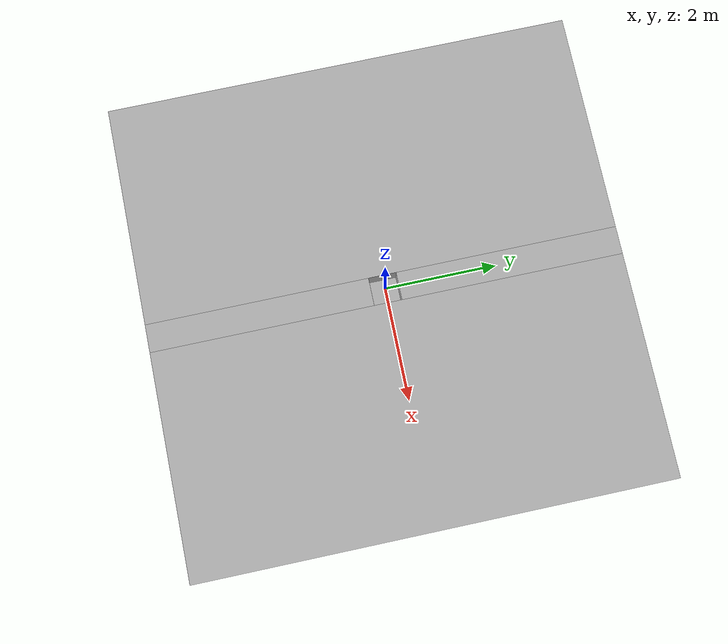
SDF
<?xml version="1.0"?>
<sdf version="1.7">
  <model name="table_with_hole">
  <pose>0 0 0 0 0 0</pose>

    <link name="table_left">
      <pose>-2.25 0 -0.3 0 0 0</pose>
      <visual name="left_visual">
        <geometry>
          <box>
            <size>4 8.5 0.6</size>
          </box>
        </geometry>
      </visual>
      <collision name="left_collision">
        <geometry>
          <box>
            <size>4 8.5 0.6</size>
          </box>
        </geometry>
      </collision>
    </link>

    <link name="table_right">
      <pose>2.25 0 -0.3 0 0 0</pose>
      <visual name="right_visual">
        <geometry>
          <box>
            <size>4 8.5 0.6</size>
          </box>
        </geometry>
      </visual>
      <collision name="right_collision">
        <geometry>
          <box>
            <size>4 8.5 0.6</size>
          </box>
        </geometry>
      </collision>
    </link>

    <link name="table_top">
      <pose>0 2.25 -0.3 0 0 0</pose>
      <visual name="top_visual">
        <geometry>
          <box>
            <size>0.5 4 0.6</size>
          </box>
        </geometry>
      </visual>
      <collision name="top_collision">
        <geometry>
          <box>
            <size>0.5 4 0.6</size>
          </box>
        </geometry>
      </collision>
    </link>

    <link name="table_bottom">
      <pose>0 -2.25 -0.3 0 0 0</pose>
      <visual name="bottom_visual">
        <geometry>
          <box>
            <size>0.5 4 0.6</size>
          </box>
        </geometry>
      </visual>
      <collision name="bottom_collision">
        <geometry>
          <box>
            <size>0.5 4 0.6</size>
          </box>
        </geometry>
      </collision>
    </link>

    <link name="hole_floor">
      <pose>0 0 -0.55 0 0 0</pose>
      <visual name="floor_visual">
        <geometry>
          <box>
            <size>0.5 0.5 0.1</size>
          </box>
        </geometry>
      </visual>
      <collision name="floor_collision">
        <geometry>
          <box>
            <size>0.5 0.5 0.1</size>
          </box>
        </geometry>
      </collision>
    </link>

    <joint name="joint_left" type="fixed">
      <parent>hole_floor</parent>
      <child>table_left</child>
    </joint>

    <joint name="joint_right" type="fixed">
      <parent>hole_floor</parent>
      <child>table_right</child>
    </joint>

    <joint name="joint_top" type="fixed">
      <parent>hole_floor</parent>
      <child>table_top</child>
    </joint>

    <joint name="joint_bottom" type="fixed">
      <parent>hole_floor</parent>
      <child>table_bottom</child>
    </joint>

  </model>
</sdf>
